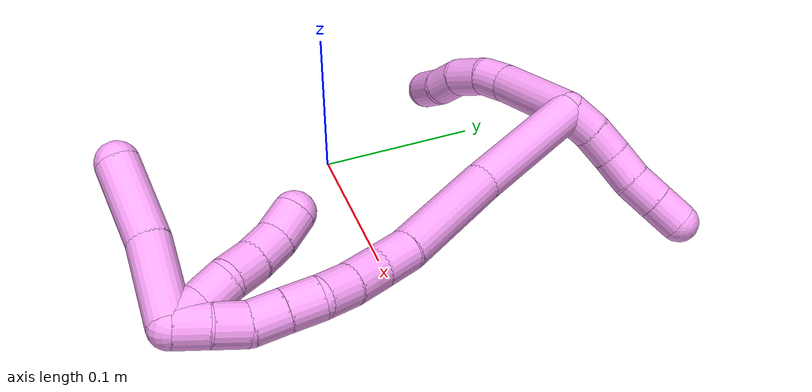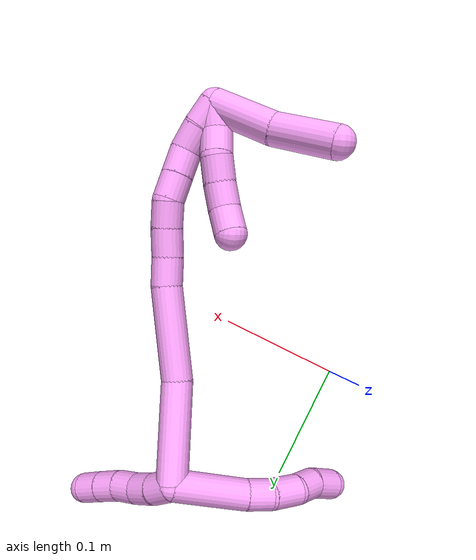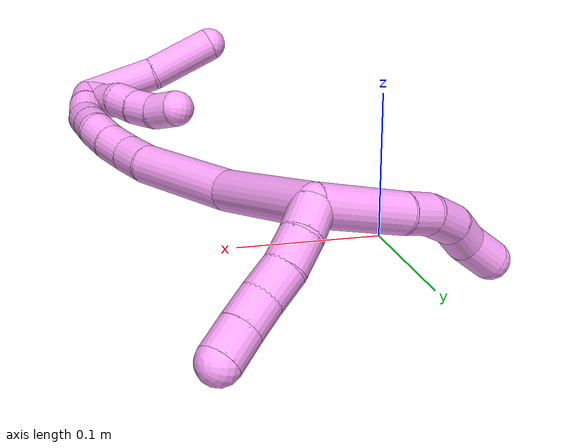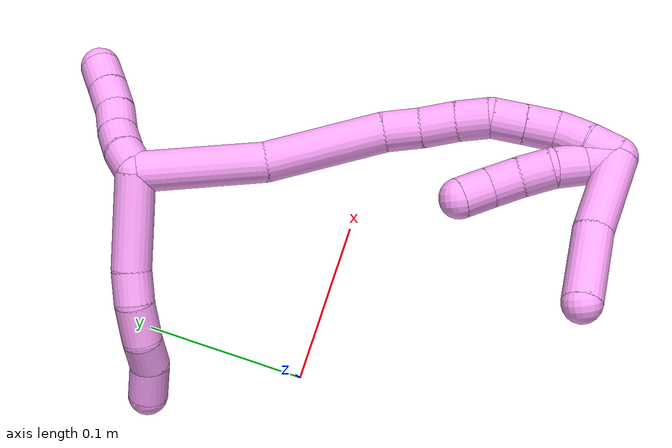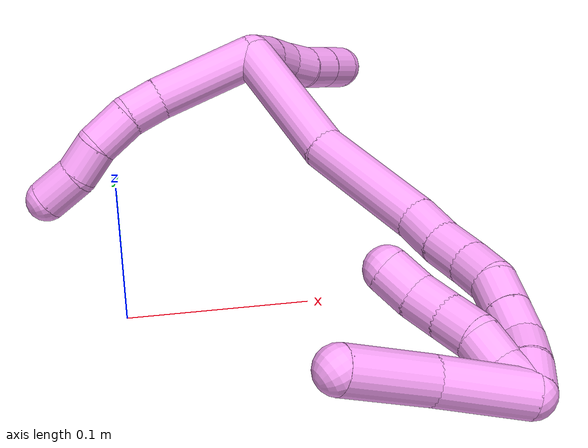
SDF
<sdf version="1.7">
 <world name="default">
  <model name="4">
   <static>0</static>
   <link name="4">
    <collision name="collision-cylinder-e_1_2_8">
     <pose>-0.003845 0.004073 -0.029477 -3.00429 -0.128507 1.50445</pose>
     <geometry><cylinder><radius>0.0125</radius><length>0.060009</length></cylinder></geometry>
     <surface>
      <friction><ode><mu>1.16</mu><mu2>1.16</mu2><slip1>0</slip1><slip2>0</slip2></ode></friction>
      <contact><ode><kp>1e+06</kp><kd>1</kd><max_vel>0</max_vel><min_depth>0.001</min_depth></ode></contact>
     </surface>
    </collision>
    <visual name="visual-cylinder-e_1_2_8">
     <pose>-0.003845 0.004073 -0.029477 -3.00429 -0.128507 1.50445</pose>
     <geometry><cylinder><radius>0.0125</radius><length>0.060009</length></cylinder></geometry>
     <material><ambient>1 0.65098 0.996078 1</ambient></material>
    </visual>
    <collision name="collision-cylinder-e_2_8_9">
     <pose>-0.008115 0.008508 -0.069238 -3.10638 -0.041237 1.72813</pose>
     <geometry><cylinder><radius>0.0125</radius><length>0.020598</length></cylinder></geometry>
     <surface>
      <friction><ode><mu>1.16</mu><mu2>1.16</mu2><slip1>0</slip1><slip2>0</slip2></ode></friction>
      <contact><ode><kp>1e+06</kp><kd>1</kd><max_vel>0</max_vel><min_depth>0.001</min_depth></ode></contact>
     </surface>
    </collision>
    <visual name="visual-cylinder-e_2_8_9">
     <pose>-0.008115 0.008508 -0.069238 -3.10638 -0.041237 1.72813</pose>
     <geometry><cylinder><radius>0.0125</radius><length>0.020598</length></cylinder></geometry>
     <material><ambient>1 0.65098 0.996078 1</ambient></material>
    </visual>
    <collision name="collision-cylinder-e_3_9_10">
     <pose>-0.006214 0.010798 -0.091478 -2.98178 0.189753 -1.74254</pose>
     <geometry><cylinder><radius>0.0125</radius><length>0.024664</length></cylinder></geometry>
     <surface>
      <friction><ode><mu>1.16</mu><mu2>1.16</mu2><slip1>0</slip1><slip2>0</slip2></ode></friction>
      <contact><ode><kp>1e+06</kp><kd>1</kd><max_vel>0</max_vel><min_depth>0.001</min_depth></ode></contact>
     </surface>
    </collision>
    <visual name="visual-cylinder-e_3_9_10">
     <pose>-0.006214 0.010798 -0.091478 -2.98178 0.189753 -1.74254</pose>
     <geometry><cylinder><radius>0.0125</radius><length>0.024664</length></cylinder></geometry>
     <material><ambient>1 0.65098 0.996078 1</ambient></material>
    </visual>
    <collision name="collision-cylinder-e_4_10_11">
     <pose>0.000291 0.016208 -0.112274 -2.76624 0.414352 -1.67209</pose>
     <geometry><cylinder><radius>0.0125</radius><length>0.020758</length></cylinder></geometry>
     <surface>
      <friction><ode><mu>1.16</mu><mu2>1.16</mu2><slip1>0</slip1><slip2>0</slip2></ode></friction>
      <contact><ode><kp>1e+06</kp><kd>1</kd><max_vel>0</max_vel><min_depth>0.001</min_depth></ode></contact>
     </surface>
    </collision>
    <visual name="visual-cylinder-e_4_10_11">
     <pose>0.000291 0.016208 -0.112274 -2.76624 0.414352 -1.67209</pose>
     <geometry><cylinder><radius>0.0125</radius><length>0.020758</length></cylinder></geometry>
     <material><ambient>1 0.65098 0.996078 1</ambient></material>
    </visual>
    <collision name="collision-cylinder-e_5_11_6">
     <pose>0.006115 0.025038 -0.131713 -2.67439 0.137743 -0.564327</pose>
     <geometry><cylinder><radius>0.0125</radius><length>0.023971</length></cylinder></geometry>
     <surface>
      <friction><ode><mu>1.16</mu><mu2>1.16</mu2><slip1>0</slip1><slip2>0</slip2></ode></friction>
      <contact><ode><kp>1e+06</kp><kd>1</kd><max_vel>0</max_vel><min_depth>0.001</min_depth></ode></contact>
     </surface>
    </collision>
    <visual name="visual-cylinder-e_5_11_6">
     <pose>0.006115 0.025038 -0.131713 -2.67439 0.137743 -0.564327</pose>
     <geometry><cylinder><radius>0.0125</radius><length>0.023971</length></cylinder></geometry>
     <material><ambient>1 0.65098 0.996078 1</ambient></material>
    </visual>
    <collision name="collision-cylinder-e_1_2_12">
     <pose>0.002737 0.007761 0.005682 -0.938846 0.277248 -0.141304</pose>
     <geometry><cylinder><radius>0.0125</radius><length>0.02</length></cylinder></geometry>
     <surface>
      <friction><ode><mu>1.16</mu><mu2>1.16</mu2><slip1>0</slip1><slip2>0</slip2></ode></friction>
      <contact><ode><kp>1e+06</kp><kd>1</kd><max_vel>0</max_vel><min_depth>0.001</min_depth></ode></contact>
     </surface>
    </collision>
    <visual name="visual-cylinder-e_1_2_12">
     <pose>0.002737 0.007761 0.005682 -0.938846 0.277248 -0.141304</pose>
     <geometry><cylinder><radius>0.0125</radius><length>0.02</length></cylinder></geometry>
     <material><ambient>1 0.65098 0.996078 1</ambient></material>
    </visual>
    <collision name="collision-cylinder-e_2_12_13">
     <pose>0.009695 0.02269 0.016912 -0.912146 0.43579 -0.216385</pose>
     <geometry><cylinder><radius>0.0125</radius><length>0.02</length></cylinder></geometry>
     <surface>
      <friction><ode><mu>1.16</mu><mu2>1.16</mu2><slip1>0</slip1><slip2>0</slip2></ode></friction>
      <contact><ode><kp>1e+06</kp><kd>1</kd><max_vel>0</max_vel><min_depth>0.001</min_depth></ode></contact>
     </surface>
    </collision>
    <visual name="visual-cylinder-e_2_12_13">
     <pose>0.009695 0.02269 0.016912 -0.912146 0.43579 -0.216385</pose>
     <geometry><cylinder><radius>0.0125</radius><length>0.02</length></cylinder></geometry>
     <material><ambient>1 0.65098 0.996078 1</ambient></material>
    </visual>
    <collision name="collision-cylinder-e_3_13_14">
     <pose>0.01872 0.035739 0.028969 -0.734685 0.501018 -0.1963</pose>
     <geometry><cylinder><radius>0.0125</radius><length>0.02</length></cylinder></geometry>
     <surface>
      <friction><ode><mu>1.16</mu><mu2>1.16</mu2><slip1>0</slip1><slip2>0</slip2></ode></friction>
      <contact><ode><kp>1e+06</kp><kd>1</kd><max_vel>0</max_vel><min_depth>0.001</min_depth></ode></contact>
     </surface>
    </collision>
    <visual name="visual-cylinder-e_3_13_14">
     <pose>0.01872 0.035739 0.028969 -0.734685 0.501018 -0.1963</pose>
     <geometry><cylinder><radius>0.0125</radius><length>0.02</length></cylinder></geometry>
     <material><ambient>1 0.65098 0.996078 1</ambient></material>
    </visual>
    <collision name="collision-cylinder-e_4_14_15">
     <pose>0.026846 0.047967 0.042452 -0.738391 0.338729 -0.132142</pose>
     <geometry><cylinder><radius>0.0125</radius><length>0.02</length></cylinder></geometry>
     <surface>
      <friction><ode><mu>1.16</mu><mu2>1.16</mu2><slip1>0</slip1><slip2>0</slip2></ode></friction>
      <contact><ode><kp>1e+06</kp><kd>1</kd><max_vel>0</max_vel><min_depth>0.001</min_depth></ode></contact>
     </surface>
    </collision>
    <visual name="visual-cylinder-e_4_14_15">
     <pose>0.026846 0.047967 0.042452 -0.738391 0.338729 -0.132142</pose>
     <geometry><cylinder><radius>0.0125</radius><length>0.02</length></cylinder></geometry>
     <material><ambient>1 0.65098 0.996078 1</ambient></material>
    </visual>
    <collision name="collision-cylinder-e_5_15_5">
     <pose>0.033411 0.060857 0.056261 -0.763569 0.330186 -0.133583</pose>
     <geometry><cylinder><radius>0.0125</radius><length>0.02</length></cylinder></geometry>
     <surface>
      <friction><ode><mu>1.16</mu><mu2>1.16</mu2><slip1>0</slip1><slip2>0</slip2></ode></friction>
      <contact><ode><kp>1e+06</kp><kd>1</kd><max_vel>0</max_vel><min_depth>0.001</min_depth></ode></contact>
     </surface>
    </collision>
    <visual name="visual-cylinder-e_5_15_5">
     <pose>0.033411 0.060857 0.056261 -0.763569 0.330186 -0.133583</pose>
     <geometry><cylinder><radius>0.0125</radius><length>0.02</length></cylinder></geometry>
     <material><ambient>1 0.65098 0.996078 1</ambient></material>
    </visual>
    <collision name="collision-cylinder-e_1_2_16">
     <pose>0.031946 -0.023199 -0.002678 1.68571 0.939559 1.03562</pose>
     <geometry><cylinder><radius>0.0125</radius><length>0.079143</length></cylinder></geometry>
     <surface>
      <friction><ode><mu>1.16</mu><mu2>1.16</mu2><slip1>0</slip1><slip2>0</slip2></ode></friction>
      <contact><ode><kp>1e+06</kp><kd>1</kd><max_vel>0</max_vel><min_depth>0.001</min_depth></ode></contact>
     </surface>
    </collision>
    <visual name="visual-cylinder-e_1_2_16">
     <pose>0.031946 -0.023199 -0.002678 1.68571 0.939559 1.03562</pose>
     <geometry><cylinder><radius>0.0125</radius><length>0.079143</length></cylinder></geometry>
     <material><ambient>1 0.65098 0.996078 1</ambient></material>
    </visual>
    <collision name="collision-cylinder-e_2_16_17">
     <pose>0.090836 -0.071801 -0.001019 1.40172 0.807656 0.692085</pose>
     <geometry><cylinder><radius>0.0125</radius><length>0.07457</length></cylinder></geometry>
     <surface>
      <friction><ode><mu>1.16</mu><mu2>1.16</mu2><slip1>0</slip1><slip2>0</slip2></ode></friction>
      <contact><ode><kp>1e+06</kp><kd>1</kd><max_vel>0</max_vel><min_depth>0.001</min_depth></ode></contact>
     </surface>
    </collision>
    <visual name="visual-cylinder-e_2_16_17">
     <pose>0.090836 -0.071801 -0.001019 1.40172 0.807656 0.692085</pose>
     <geometry><cylinder><radius>0.0125</radius><length>0.07457</length></cylinder></geometry>
     <material><ambient>1 0.65098 0.996078 1</ambient></material>
    </visual>
    <collision name="collision-cylinder-e_3_17_18">
     <pose>0.125367 -0.105649 0.003114 1.59492 0.731807 0.748072</pose>
     <geometry><cylinder><radius>0.0125</radius><length>0.022706</length></cylinder></geometry>
     <surface>
      <friction><ode><mu>1.16</mu><mu2>1.16</mu2><slip1>0</slip1><slip2>0</slip2></ode></friction>
      <contact><ode><kp>1e+06</kp><kd>1</kd><max_vel>0</max_vel><min_depth>0.001</min_depth></ode></contact>
     </surface>
    </collision>
    <visual name="visual-cylinder-e_3_17_18">
     <pose>0.125367 -0.105649 0.003114 1.59492 0.731807 0.748072</pose>
     <geometry><cylinder><radius>0.0125</radius><length>0.022706</length></cylinder></geometry>
     <material><ambient>1 0.65098 0.996078 1</ambient></material>
    </visual>
    <collision name="collision-cylinder-e_4_18_19">
     <pose>0.139795 -0.122957 0.003609 1.49214 0.655829 0.609296</pose>
     <geometry><cylinder><radius>0.0125</radius><length>0.022439</length></cylinder></geometry>
     <surface>
      <friction><ode><mu>1.16</mu><mu2>1.16</mu2><slip1>0</slip1><slip2>0</slip2></ode></friction>
      <contact><ode><kp>1e+06</kp><kd>1</kd><max_vel>0</max_vel><min_depth>0.001</min_depth></ode></contact>
     </surface>
    </collision>
    <visual name="visual-cylinder-e_4_18_19">
     <pose>0.139795 -0.122957 0.003609 1.49214 0.655829 0.609296</pose>
     <geometry><cylinder><radius>0.0125</radius><length>0.022439</length></cylinder></geometry>
     <material><ambient>1 0.65098 0.996078 1</ambient></material>
    </visual>
    <collision name="collision-cylinder-e_5_19_20">
     <pose>0.152388 -0.140467 0.004183 1.58523 0.586884 0.594924</pose>
     <geometry><cylinder><radius>0.0125</radius><length>0.02077</length></cylinder></geometry>
     <surface>
      <friction><ode><mu>1.16</mu><mu2>1.16</mu2><slip1>0</slip1><slip2>0</slip2></ode></friction>
      <contact><ode><kp>1e+06</kp><kd>1</kd><max_vel>0</max_vel><min_depth>0.001</min_depth></ode></contact>
     </surface>
    </collision>
    <visual name="visual-cylinder-e_5_19_20">
     <pose>0.152388 -0.140467 0.004183 1.58523 0.586884 0.594924</pose>
     <geometry><cylinder><radius>0.0125</radius><length>0.02077</length></cylinder></geometry>
     <material><ambient>1 0.65098 0.996078 1</ambient></material>
    </visual>
    <collision name="collision-cylinder-e_6_20_21">
     <pose>0.164488 -0.156222 0.000843 1.99562 0.683145 1.00724</pose>
     <geometry><cylinder><radius>0.0125</radius><length>0.020118</length></cylinder></geometry>
     <surface>
      <friction><ode><mu>1.16</mu><mu2>1.16</mu2><slip1>0</slip1><slip2>0</slip2></ode></friction>
      <contact><ode><kp>1e+06</kp><kd>1</kd><max_vel>0</max_vel><min_depth>0.001</min_depth></ode></contact>
     </surface>
    </collision>
    <visual name="visual-cylinder-e_6_20_21">
     <pose>0.164488 -0.156222 0.000843 1.99562 0.683145 1.00724</pose>
     <geometry><cylinder><radius>0.0125</radius><length>0.020118</length></cylinder></geometry>
     <material><ambient>1 0.65098 0.996078 1</ambient></material>
    </visual>
    <collision name="collision-cylinder-e_7_21_22">
     <pose>0.177356 -0.170324 -0.005663 2.01053 0.700596 1.04468</pose>
     <geometry><cylinder><radius>0.0125</radius><length>0.020221</length></cylinder></geometry>
     <surface>
      <friction><ode><mu>1.16</mu><mu2>1.16</mu2><slip1>0</slip1><slip2>0</slip2></ode></friction>
      <contact><ode><kp>1e+06</kp><kd>1</kd><max_vel>0</max_vel><min_depth>0.001</min_depth></ode></contact>
     </surface>
    </collision>
    <visual name="visual-cylinder-e_7_21_22">
     <pose>0.177356 -0.170324 -0.005663 2.01053 0.700596 1.04468</pose>
     <geometry><cylinder><radius>0.0125</radius><length>0.020221</length></cylinder></geometry>
     <material><ambient>1 0.65098 0.996078 1</ambient></material>
    </visual>
    <collision name="collision-cylinder-e_8_22_23">
     <pose>0.187435 -0.185592 -0.013307 2.05517 0.363933 0.591598</pose>
     <geometry><cylinder><radius>0.0125</radius><length>0.02001</length></cylinder></geometry>
     <surface>
      <friction><ode><mu>1.16</mu><mu2>1.16</mu2><slip1>0</slip1><slip2>0</slip2></ode></friction>
      <contact><ode><kp>1e+06</kp><kd>1</kd><max_vel>0</max_vel><min_depth>0.001</min_depth></ode></contact>
     </surface>
    </collision>
    <visual name="visual-cylinder-e_8_22_23">
     <pose>0.187435 -0.185592 -0.013307 2.05517 0.363933 0.591598</pose>
     <geometry><cylinder><radius>0.0125</radius><length>0.02001</length></cylinder></geometry>
     <material><ambient>1 0.65098 0.996078 1</ambient></material>
    </visual>
    <collision name="collision-cylinder-e_9_23_1">
     <pose>0.194799 -0.201461 -0.022961 2.18005 0.389534 0.723152</pose>
     <geometry><cylinder><radius>0.0125</radius><length>0.020024</length></cylinder></geometry>
     <surface>
      <friction><ode><mu>1.16</mu><mu2>1.16</mu2><slip1>0</slip1><slip2>0</slip2></ode></friction>
      <contact><ode><kp>1e+06</kp><kd>1</kd><max_vel>0</max_vel><min_depth>0.001</min_depth></ode></contact>
     </surface>
    </collision>
    <visual name="visual-cylinder-e_9_23_1">
     <pose>0.194799 -0.201461 -0.022961 2.18005 0.389534 0.723152</pose>
     <geometry><cylinder><radius>0.0125</radius><length>0.020024</length></cylinder></geometry>
     <material><ambient>1 0.65098 0.996078 1</ambient></material>
    </visual>
    <collision name="collision-cylinder-e_1_1_24">
     <pose>0.191482 -0.202076 -0.029021 -1.67913 -0.792233 0.872449</pose>
     <geometry><cylinder><radius>0.0125</radius><length>0.02</length></cylinder></geometry>
     <surface>
      <friction><ode><mu>1.16</mu><mu2>1.16</mu2><slip1>0</slip1><slip2>0</slip2></ode></friction>
      <contact><ode><kp>1e+06</kp><kd>1</kd><max_vel>0</max_vel><min_depth>0.001</min_depth></ode></contact>
     </surface>
    </collision>
    <visual name="visual-cylinder-e_1_1_24">
     <pose>0.191482 -0.202076 -0.029021 -1.67913 -0.792233 0.872449</pose>
     <geometry><cylinder><radius>0.0125</radius><length>0.02</length></cylinder></geometry>
     <material><ambient>1 0.65098 0.996078 1</ambient></material>
    </visual>
    <collision name="collision-cylinder-e_2_24_25">
     <pose>0.175882 -0.18981 -0.029377 -1.49471 -1.01229 0.949024</pose>
     <geometry><cylinder><radius>0.0125</radius><length>0.02</length></cylinder></geometry>
     <surface>
      <friction><ode><mu>1.16</mu><mu2>1.16</mu2><slip1>0</slip1><slip2>0</slip2></ode></friction>
      <contact><ode><kp>1e+06</kp><kd>1</kd><max_vel>0</max_vel><min_depth>0.001</min_depth></ode></contact>
     </surface>
    </collision>
    <visual name="visual-cylinder-e_2_24_25">
     <pose>0.175882 -0.18981 -0.029377 -1.49471 -1.01229 0.949024</pose>
     <geometry><cylinder><radius>0.0125</radius><length>0.02</length></cylinder></geometry>
     <material><ambient>1 0.65098 0.996078 1</ambient></material>
    </visual>
    <collision name="collision-cylinder-e_3_25_26">
     <pose>0.160866 -0.177109 -0.030484 -1.77164 -0.712184 0.854505</pose>
     <geometry><cylinder><radius>0.0125</radius><length>0.02</length></cylinder></geometry>
     <surface>
      <friction><ode><mu>1.16</mu><mu2>1.16</mu2><slip1>0</slip1><slip2>0</slip2></ode></friction>
      <contact><ode><kp>1e+06</kp><kd>1</kd><max_vel>0</max_vel><min_depth>0.001</min_depth></ode></contact>
     </surface>
    </collision>
    <visual name="visual-cylinder-e_3_25_26">
     <pose>0.160866 -0.177109 -0.030484 -1.77164 -0.712184 0.854505</pose>
     <geometry><cylinder><radius>0.0125</radius><length>0.02</length></cylinder></geometry>
     <material><ambient>1 0.65098 0.996078 1</ambient></material>
    </visual>
    <collision name="collision-cylinder-e_4_26_27">
     <pose>0.147058 -0.163101 -0.033905 -1.85301 -0.814521 1.04251</pose>
     <geometry><cylinder><radius>0.0125</radius><length>0.02</length></cylinder></geometry>
     <surface>
      <friction><ode><mu>1.16</mu><mu2>1.16</mu2><slip1>0</slip1><slip2>0</slip2></ode></friction>
      <contact><ode><kp>1e+06</kp><kd>1</kd><max_vel>0</max_vel><min_depth>0.001</min_depth></ode></contact>
     </surface>
    </collision>
    <visual name="visual-cylinder-e_4_26_27">
     <pose>0.147058 -0.163101 -0.033905 -1.85301 -0.814521 1.04251</pose>
     <geometry><cylinder><radius>0.0125</radius><length>0.02</length></cylinder></geometry>
     <material><ambient>1 0.65098 0.996078 1</ambient></material>
    </visual>
    <collision name="collision-cylinder-e_5_27_4">
     <pose>0.13099 -0.152042 -0.037461 -1.92353 -1.07452 1.41373</pose>
     <geometry><cylinder><radius>0.0125</radius><length>0.02</length></cylinder></geometry>
     <surface>
      <friction><ode><mu>1.16</mu><mu2>1.16</mu2><slip1>0</slip1><slip2>0</slip2></ode></friction>
      <contact><ode><kp>1e+06</kp><kd>1</kd><max_vel>0</max_vel><min_depth>0.001</min_depth></ode></contact>
     </surface>
    </collision>
    <visual name="visual-cylinder-e_5_27_4">
     <pose>0.13099 -0.152042 -0.037461 -1.92353 -1.07452 1.41373</pose>
     <geometry><cylinder><radius>0.0125</radius><length>0.02</length></cylinder></geometry>
     <material><ambient>1 0.65098 0.996078 1</ambient></material>
    </visual>
    <collision name="collision-cylinder-e_1_1_28">
     <pose>0.181741 -0.210117 -0.047402 3.08626 -0.721363 -2.99511</pose>
     <geometry><cylinder><radius>0.0125</radius><length>0.051059</length></cylinder></geometry>
     <surface>
      <friction><ode><mu>1.16</mu><mu2>1.16</mu2><slip1>0</slip1><slip2>0</slip2></ode></friction>
      <contact><ode><kp>1e+06</kp><kd>1</kd><max_vel>0</max_vel><min_depth>0.001</min_depth></ode></contact>
     </surface>
    </collision>
    <visual name="visual-cylinder-e_1_1_28">
     <pose>0.181741 -0.210117 -0.047402 3.08626 -0.721363 -2.99511</pose>
     <geometry><cylinder><radius>0.0125</radius><length>0.051059</length></cylinder></geometry>
     <material><ambient>1 0.65098 0.996078 1</ambient></material>
    </visual>
    <collision name="collision-cylinder-e_2_28_3">
     <pose>0.149372 -0.216504 -0.084706 2.85633 -0.686458 -2.37741</pose>
     <geometry><cylinder><radius>0.0125</radius><length>0.048941</length></cylinder></geometry>
     <surface>
      <friction><ode><mu>1.16</mu><mu2>1.16</mu2><slip1>0</slip1><slip2>0</slip2></ode></friction>
      <contact><ode><kp>1e+06</kp><kd>1</kd><max_vel>0</max_vel><min_depth>0.001</min_depth></ode></contact>
     </surface>
    </collision>
    <visual name="visual-cylinder-e_2_28_3">
     <pose>0.149372 -0.216504 -0.084706 2.85633 -0.686458 -2.37741</pose>
     <geometry><cylinder><radius>0.0125</radius><length>0.048941</length></cylinder></geometry>
     <material><ambient>1 0.65098 0.996078 1</ambient></material>
    </visual>
    <collision name="collision-sphere-3">
     <pose>0.133862 -0.22183 -0.102869 0 -0 0</pose>
     <geometry><sphere><radius>0.0125</radius></sphere></geometry>
     <surface>
      <friction><ode><mu>1.16</mu><mu2>1.16</mu2><slip1>0</slip1><slip2>0</slip2></ode></friction>
      <contact><ode><kp>1e+06</kp><kd>1</kd><max_vel>0</max_vel><min_depth>0.001</min_depth></ode></contact>
     </surface>
    </collision>
    <visual name="visual-sphere-3">
     <pose>0.133862 -0.22183 -0.102869 0 -0 0</pose>
     <geometry><sphere><radius>0.0125</radius></sphere></geometry>
     <material><ambient>1 0.65098 0.996078 1</ambient></material>
    </visual>
    <collision name="collision-sphere-28">
     <pose>0.164881 -0.211177 -0.066543 0 -0 0</pose>
     <geometry><sphere><radius>0.0125</radius></sphere></geometry>
     <surface>
      <friction><ode><mu>1.16</mu><mu2>1.16</mu2><slip1>0</slip1><slip2>0</slip2></ode></friction>
      <contact><ode><kp>1e+06</kp><kd>1</kd><max_vel>0</max_vel><min_depth>0.001</min_depth></ode></contact>
     </surface>
    </collision>
    <visual name="visual-sphere-28">
     <pose>0.164881 -0.211177 -0.066543 0 -0 0</pose>
     <geometry><sphere><radius>0.0125</radius></sphere></geometry>
     <material><ambient>1 0.65098 0.996078 1</ambient></material>
    </visual>
    <collision name="collision-sphere-4">
     <pose>0.122196 -0.147574 -0.039106 0 -0 0</pose>
     <geometry><sphere><radius>0.0125</radius></sphere></geometry>
     <surface>
      <friction><ode><mu>1.16</mu><mu2>1.16</mu2><slip1>0</slip1><slip2>0</slip2></ode></friction>
      <contact><ode><kp>1e+06</kp><kd>1</kd><max_vel>0</max_vel><min_depth>0.001</min_depth></ode></contact>
     </surface>
    </collision>
    <visual name="visual-sphere-4">
     <pose>0.122196 -0.147574 -0.039106 0 -0 0</pose>
     <geometry><sphere><radius>0.0125</radius></sphere></geometry>
     <material><ambient>1 0.65098 0.996078 1</ambient></material>
    </visual>
    <collision name="collision-sphere-27">
     <pose>0.139784 -0.15651 -0.035816 0 -0 0</pose>
     <geometry><sphere><radius>0.0125</radius></sphere></geometry>
     <surface>
      <friction><ode><mu>1.16</mu><mu2>1.16</mu2><slip1>0</slip1><slip2>0</slip2></ode></friction>
      <contact><ode><kp>1e+06</kp><kd>1</kd><max_vel>0</max_vel><min_depth>0.001</min_depth></ode></contact>
     </surface>
    </collision>
    <visual name="visual-sphere-27">
     <pose>0.139784 -0.15651 -0.035816 0 -0 0</pose>
     <geometry><sphere><radius>0.0125</radius></sphere></geometry>
     <material><ambient>1 0.65098 0.996078 1</ambient></material>
    </visual>
    <collision name="collision-sphere-26">
     <pose>0.154332 -0.169692 -0.031994 0 -0 0</pose>
     <geometry><sphere><radius>0.0125</radius></sphere></geometry>
     <surface>
      <friction><ode><mu>1.16</mu><mu2>1.16</mu2><slip1>0</slip1><slip2>0</slip2></ode></friction>
      <contact><ode><kp>1e+06</kp><kd>1</kd><max_vel>0</max_vel><min_depth>0.001</min_depth></ode></contact>
     </surface>
    </collision>
    <visual name="visual-sphere-26">
     <pose>0.154332 -0.169692 -0.031994 0 -0 0</pose>
     <geometry><sphere><radius>0.0125</radius></sphere></geometry>
     <material><ambient>1 0.65098 0.996078 1</ambient></material>
    </visual>
    <collision name="collision-sphere-25">
     <pose>0.167401 -0.184526 -0.028974 0 -0 0</pose>
     <geometry><sphere><radius>0.0125</radius></sphere></geometry>
     <surface>
      <friction><ode><mu>1.16</mu><mu2>1.16</mu2><slip1>0</slip1><slip2>0</slip2></ode></friction>
      <contact><ode><kp>1e+06</kp><kd>1</kd><max_vel>0</max_vel><min_depth>0.001</min_depth></ode></contact>
     </surface>
    </collision>
    <visual name="visual-sphere-25">
     <pose>0.167401 -0.184526 -0.028974 0 -0 0</pose>
     <geometry><sphere><radius>0.0125</radius></sphere></geometry>
     <material><ambient>1 0.65098 0.996078 1</ambient></material>
    </visual>
    <collision name="collision-sphere-24">
     <pose>0.184362 -0.195094 -0.02978 0 -0 0</pose>
     <geometry><sphere><radius>0.0125</radius></sphere></geometry>
     <surface>
      <friction><ode><mu>1.16</mu><mu2>1.16</mu2><slip1>0</slip1><slip2>0</slip2></ode></friction>
      <contact><ode><kp>1e+06</kp><kd>1</kd><max_vel>0</max_vel><min_depth>0.001</min_depth></ode></contact>
     </surface>
    </collision>
    <visual name="visual-sphere-24">
     <pose>0.184362 -0.195094 -0.02978 0 -0 0</pose>
     <geometry><sphere><radius>0.0125</radius></sphere></geometry>
     <material><ambient>1 0.65098 0.996078 1</ambient></material>
    </visual>
    <collision name="collision-sphere-1">
     <pose>0.198601 -0.209057 -0.028261 0 -0 0</pose>
     <geometry><sphere><radius>0.0125</radius></sphere></geometry>
     <surface>
      <friction><ode><mu>1.16</mu><mu2>1.16</mu2><slip1>0</slip1><slip2>0</slip2></ode></friction>
      <contact><ode><kp>1e+06</kp><kd>1</kd><max_vel>0</max_vel><min_depth>0.001</min_depth></ode></contact>
     </surface>
    </collision>
    <visual name="visual-sphere-1">
     <pose>0.198601 -0.209057 -0.028261 0 -0 0</pose>
     <geometry><sphere><radius>0.0125</radius></sphere></geometry>
     <material><ambient>1 0.65098 0.996078 1</ambient></material>
    </visual>
    <collision name="collision-sphere-23">
     <pose>0.190996 -0.193866 -0.017661 0 -0 0</pose>
     <geometry><sphere><radius>0.0125</radius></sphere></geometry>
     <surface>
      <friction><ode><mu>1.16</mu><mu2>1.16</mu2><slip1>0</slip1><slip2>0</slip2></ode></friction>
      <contact><ode><kp>1e+06</kp><kd>1</kd><max_vel>0</max_vel><min_depth>0.001</min_depth></ode></contact>
     </surface>
    </collision>
    <visual name="visual-sphere-23">
     <pose>0.190996 -0.193866 -0.017661 0 -0 0</pose>
     <geometry><sphere><radius>0.0125</radius></sphere></geometry>
     <material><ambient>1 0.65098 0.996078 1</ambient></material>
    </visual>
    <collision name="collision-sphere-22">
     <pose>0.183874 -0.177318 -0.008954 0 -0 0</pose>
     <geometry><sphere><radius>0.0125</radius></sphere></geometry>
     <surface>
      <friction><ode><mu>1.16</mu><mu2>1.16</mu2><slip1>0</slip1><slip2>0</slip2></ode></friction>
      <contact><ode><kp>1e+06</kp><kd>1</kd><max_vel>0</max_vel><min_depth>0.001</min_depth></ode></contact>
     </surface>
    </collision>
    <visual name="visual-sphere-22">
     <pose>0.183874 -0.177318 -0.008954 0 -0 0</pose>
     <geometry><sphere><radius>0.0125</radius></sphere></geometry>
     <material><ambient>1 0.65098 0.996078 1</ambient></material>
    </visual>
    <collision name="collision-sphere-21">
     <pose>0.170838 -0.16333 -0.002373 0 -0 0</pose>
     <geometry><sphere><radius>0.0125</radius></sphere></geometry>
     <surface>
      <friction><ode><mu>1.16</mu><mu2>1.16</mu2><slip1>0</slip1><slip2>0</slip2></ode></friction>
      <contact><ode><kp>1e+06</kp><kd>1</kd><max_vel>0</max_vel><min_depth>0.001</min_depth></ode></contact>
     </surface>
    </collision>
    <visual name="visual-sphere-21">
     <pose>0.170838 -0.16333 -0.002373 0 -0 0</pose>
     <geometry><sphere><radius>0.0125</radius></sphere></geometry>
     <material><ambient>1 0.65098 0.996078 1</ambient></material>
    </visual>
    <collision name="collision-sphere-6">
     <pose>0.007761 0.030385 -0.142312 0 -0 0</pose>
     <geometry><sphere><radius>0.0125</radius></sphere></geometry>
     <surface>
      <friction><ode><mu>1.16</mu><mu2>1.16</mu2><slip1>0</slip1><slip2>0</slip2></ode></friction>
      <contact><ode><kp>1e+06</kp><kd>1</kd><max_vel>0</max_vel><min_depth>0.001</min_depth></ode></contact>
     </surface>
    </collision>
    <visual name="visual-sphere-6">
     <pose>0.007761 0.030385 -0.142312 0 -0 0</pose>
     <geometry><sphere><radius>0.0125</radius></sphere></geometry>
     <material><ambient>1 0.65098 0.996078 1</ambient></material>
    </visual>
    <collision name="collision-sphere-11">
     <pose>0.00447 0.019691 -0.121113 0 -0 0</pose>
     <geometry><sphere><radius>0.0125</radius></sphere></geometry>
     <surface>
      <friction><ode><mu>1.16</mu><mu2>1.16</mu2><slip1>0</slip1><slip2>0</slip2></ode></friction>
      <contact><ode><kp>1e+06</kp><kd>1</kd><max_vel>0</max_vel><min_depth>0.001</min_depth></ode></contact>
     </surface>
    </collision>
    <visual name="visual-sphere-11">
     <pose>0.00447 0.019691 -0.121113 0 -0 0</pose>
     <geometry><sphere><radius>0.0125</radius></sphere></geometry>
     <material><ambient>1 0.65098 0.996078 1</ambient></material>
    </visual>
    <collision name="collision-sphere-10">
     <pose>-0.003887 0.012725 -0.103435 0 -0 0</pose>
     <geometry><sphere><radius>0.0125</radius></sphere></geometry>
     <surface>
      <friction><ode><mu>1.16</mu><mu2>1.16</mu2><slip1>0</slip1><slip2>0</slip2></ode></friction>
      <contact><ode><kp>1e+06</kp><kd>1</kd><max_vel>0</max_vel><min_depth>0.001</min_depth></ode></contact>
     </surface>
    </collision>
    <visual name="visual-sphere-10">
     <pose>-0.003887 0.012725 -0.103435 0 -0 0</pose>
     <geometry><sphere><radius>0.0125</radius></sphere></geometry>
     <material><ambient>1 0.65098 0.996078 1</ambient></material>
    </visual>
    <collision name="collision-sphere-9">
     <pose>-0.00854 0.00887 -0.079522 0 -0 0</pose>
     <geometry><sphere><radius>0.0125</radius></sphere></geometry>
     <surface>
      <friction><ode><mu>1.16</mu><mu2>1.16</mu2><slip1>0</slip1><slip2>0</slip2></ode></friction>
      <contact><ode><kp>1e+06</kp><kd>1</kd><max_vel>0</max_vel><min_depth>0.001</min_depth></ode></contact>
     </surface>
    </collision>
    <visual name="visual-sphere-9">
     <pose>-0.00854 0.00887 -0.079522 0 -0 0</pose>
     <geometry><sphere><radius>0.0125</radius></sphere></geometry>
     <material><ambient>1 0.65098 0.996078 1</ambient></material>
    </visual>
    <collision name="collision-sphere-2">
     <geometry><sphere><radius>0.0125</radius></sphere></geometry>
     <surface>
      <friction><ode><mu>1.16</mu><mu2>1.16</mu2><slip1>0</slip1><slip2>0</slip2></ode></friction>
      <contact><ode><kp>1e+06</kp><kd>1</kd><max_vel>0</max_vel><min_depth>0.001</min_depth></ode></contact>
     </surface>
    </collision>
    <visual name="visual-sphere-2">
     <geometry><sphere><radius>0.0125</radius></sphere></geometry>
     <material><ambient>1 0.65098 0.996078 1</ambient></material>
    </visual>
    <collision name="collision-sphere-19">
     <pose>0.146637 -0.131821 0.004308 0 -0 0</pose>
     <geometry><sphere><radius>0.0125</radius></sphere></geometry>
     <surface>
      <friction><ode><mu>1.16</mu><mu2>1.16</mu2><slip1>0</slip1><slip2>0</slip2></ode></friction>
      <contact><ode><kp>1e+06</kp><kd>1</kd><max_vel>0</max_vel><min_depth>0.001</min_depth></ode></contact>
     </surface>
    </collision>
    <visual name="visual-sphere-19">
     <pose>0.146637 -0.131821 0.004308 0 -0 0</pose>
     <geometry><sphere><radius>0.0125</radius></sphere></geometry>
     <material><ambient>1 0.65098 0.996078 1</ambient></material>
    </visual>
    <collision name="collision-sphere-8">
     <pose>-0.00769 0.008146 -0.058954 0 -0 0</pose>
     <geometry><sphere><radius>0.0125</radius></sphere></geometry>
     <surface>
      <friction><ode><mu>1.16</mu><mu2>1.16</mu2><slip1>0</slip1><slip2>0</slip2></ode></friction>
      <contact><ode><kp>1e+06</kp><kd>1</kd><max_vel>0</max_vel><min_depth>0.001</min_depth></ode></contact>
     </surface>
    </collision>
    <visual name="visual-sphere-8">
     <pose>-0.00769 0.008146 -0.058954 0 -0 0</pose>
     <geometry><sphere><radius>0.0125</radius></sphere></geometry>
     <material><ambient>1 0.65098 0.996078 1</ambient></material>
    </visual>
    <collision name="collision-sphere-12">
     <pose>0.005474 0.015521 0.011363 0 -0 0</pose>
     <geometry><sphere><radius>0.0125</radius></sphere></geometry>
     <surface>
      <friction><ode><mu>1.16</mu><mu2>1.16</mu2><slip1>0</slip1><slip2>0</slip2></ode></friction>
      <contact><ode><kp>1e+06</kp><kd>1</kd><max_vel>0</max_vel><min_depth>0.001</min_depth></ode></contact>
     </surface>
    </collision>
    <visual name="visual-sphere-12">
     <pose>0.005474 0.015521 0.011363 0 -0 0</pose>
     <geometry><sphere><radius>0.0125</radius></sphere></geometry>
     <material><ambient>1 0.65098 0.996078 1</ambient></material>
    </visual>
    <collision name="collision-sphere-13">
     <pose>0.013917 0.029859 0.02246 0 -0 0</pose>
     <geometry><sphere><radius>0.0125</radius></sphere></geometry>
     <surface>
      <friction><ode><mu>1.16</mu><mu2>1.16</mu2><slip1>0</slip1><slip2>0</slip2></ode></friction>
      <contact><ode><kp>1e+06</kp><kd>1</kd><max_vel>0</max_vel><min_depth>0.001</min_depth></ode></contact>
     </surface>
    </collision>
    <visual name="visual-sphere-13">
     <pose>0.013917 0.029859 0.02246 0 -0 0</pose>
     <geometry><sphere><radius>0.0125</radius></sphere></geometry>
     <material><ambient>1 0.65098 0.996078 1</ambient></material>
    </visual>
    <collision name="collision-sphere-14">
     <pose>0.023523 0.041619 0.035477 0 -0 0</pose>
     <geometry><sphere><radius>0.0125</radius></sphere></geometry>
     <surface>
      <friction><ode><mu>1.16</mu><mu2>1.16</mu2><slip1>0</slip1><slip2>0</slip2></ode></friction>
      <contact><ode><kp>1e+06</kp><kd>1</kd><max_vel>0</max_vel><min_depth>0.001</min_depth></ode></contact>
     </surface>
    </collision>
    <visual name="visual-sphere-14">
     <pose>0.023523 0.041619 0.035477 0 -0 0</pose>
     <geometry><sphere><radius>0.0125</radius></sphere></geometry>
     <material><ambient>1 0.65098 0.996078 1</ambient></material>
    </visual>
    <collision name="collision-sphere-15">
     <pose>0.030169 0.054316 0.049428 0 -0 0</pose>
     <geometry><sphere><radius>0.0125</radius></sphere></geometry>
     <surface>
      <friction><ode><mu>1.16</mu><mu2>1.16</mu2><slip1>0</slip1><slip2>0</slip2></ode></friction>
      <contact><ode><kp>1e+06</kp><kd>1</kd><max_vel>0</max_vel><min_depth>0.001</min_depth></ode></contact>
     </surface>
    </collision>
    <visual name="visual-sphere-15">
     <pose>0.030169 0.054316 0.049428 0 -0 0</pose>
     <geometry><sphere><radius>0.0125</radius></sphere></geometry>
     <material><ambient>1 0.65098 0.996078 1</ambient></material>
    </visual>
    <collision name="collision-sphere-5">
     <pose>0.036653 0.067399 0.063095 0 -0 0</pose>
     <geometry><sphere><radius>0.0125</radius></sphere></geometry>
     <surface>
      <friction><ode><mu>1.16</mu><mu2>1.16</mu2><slip1>0</slip1><slip2>0</slip2></ode></friction>
      <contact><ode><kp>1e+06</kp><kd>1</kd><max_vel>0</max_vel><min_depth>0.001</min_depth></ode></contact>
     </surface>
    </collision>
    <visual name="visual-sphere-5">
     <pose>0.036653 0.067399 0.063095 0 -0 0</pose>
     <geometry><sphere><radius>0.0125</radius></sphere></geometry>
     <material><ambient>1 0.65098 0.996078 1</ambient></material>
    </visual>
    <collision name="collision-sphere-16">
     <pose>0.063892 -0.046398 -0.005355 0 -0 0</pose>
     <geometry><sphere><radius>0.0125</radius></sphere></geometry>
     <surface>
      <friction><ode><mu>1.16</mu><mu2>1.16</mu2><slip1>0</slip1><slip2>0</slip2></ode></friction>
      <contact><ode><kp>1e+06</kp><kd>1</kd><max_vel>0</max_vel><min_depth>0.001</min_depth></ode></contact>
     </surface>
    </collision>
    <visual name="visual-sphere-16">
     <pose>0.063892 -0.046398 -0.005355 0 -0 0</pose>
     <geometry><sphere><radius>0.0125</radius></sphere></geometry>
     <material><ambient>1 0.65098 0.996078 1</ambient></material>
    </visual>
    <collision name="collision-sphere-17">
     <pose>0.117781 -0.097205 0.003318 0 -0 0</pose>
     <geometry><sphere><radius>0.0125</radius></sphere></geometry>
     <surface>
      <friction><ode><mu>1.16</mu><mu2>1.16</mu2><slip1>0</slip1><slip2>0</slip2></ode></friction>
      <contact><ode><kp>1e+06</kp><kd>1</kd><max_vel>0</max_vel><min_depth>0.001</min_depth></ode></contact>
     </surface>
    </collision>
    <visual name="visual-sphere-17">
     <pose>0.117781 -0.097205 0.003318 0 -0 0</pose>
     <geometry><sphere><radius>0.0125</radius></sphere></geometry>
     <material><ambient>1 0.65098 0.996078 1</ambient></material>
    </visual>
    <collision name="collision-sphere-18">
     <pose>0.132953 -0.114092 0.00291 0 -0 0</pose>
     <geometry><sphere><radius>0.0125</radius></sphere></geometry>
     <surface>
      <friction><ode><mu>1.16</mu><mu2>1.16</mu2><slip1>0</slip1><slip2>0</slip2></ode></friction>
      <contact><ode><kp>1e+06</kp><kd>1</kd><max_vel>0</max_vel><min_depth>0.001</min_depth></ode></contact>
     </surface>
    </collision>
    <visual name="visual-sphere-18">
     <pose>0.132953 -0.114092 0.00291 0 -0 0</pose>
     <geometry><sphere><radius>0.0125</radius></sphere></geometry>
     <material><ambient>1 0.65098 0.996078 1</ambient></material>
    </visual>
    <collision name="collision-sphere-20">
     <pose>0.158139 -0.149114 0.004058 0 -0 0</pose>
     <geometry><sphere><radius>0.0125</radius></sphere></geometry>
     <surface>
      <friction><ode><mu>1.16</mu><mu2>1.16</mu2><slip1>0</slip1><slip2>0</slip2></ode></friction>
      <contact><ode><kp>1e+06</kp><kd>1</kd><max_vel>0</max_vel><min_depth>0.001</min_depth></ode></contact>
     </surface>
    </collision>
    <visual name="visual-sphere-20">
     <pose>0.158139 -0.149114 0.004058 0 -0 0</pose>
     <geometry><sphere><radius>0.0125</radius></sphere></geometry>
     <material><ambient>1 0.65098 0.996078 1</ambient></material>
    </visual>
    <inertial>
     <pose>0.089523 -0.084646 -0.02477 0 -0 0</pose>
     <mass>0.75</mass>
     <inertia><ixx>0.0001</ixx><ixy>0</ixy><ixz>0</ixz><iyy>0.000135</iyy><iyz>0</iyz><izz>-1.5e-05</izz></inertia>
    </inertial>
   </link>
   <pose>0.085426 0.13169 0.06983 -1.26774 0.732153 -0.908875</pose>
  </model>
 </world>
</sdf>
